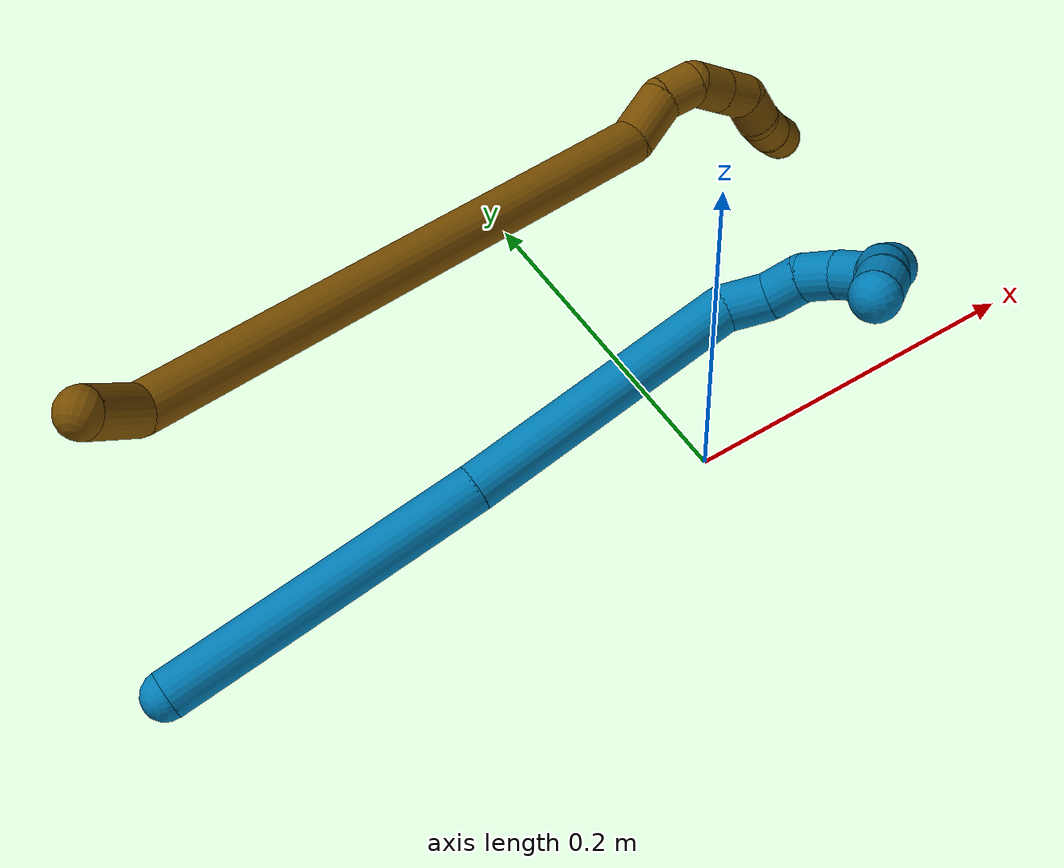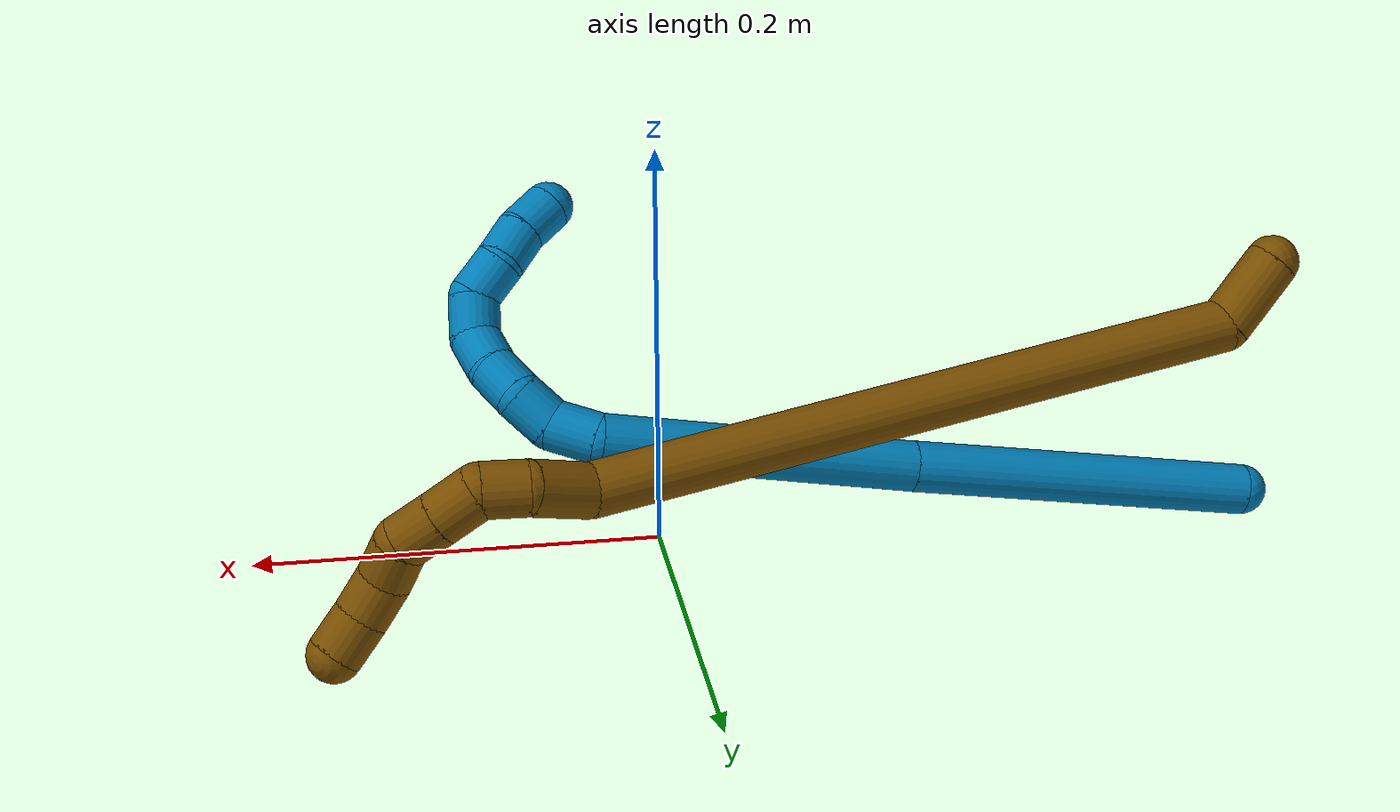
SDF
<sdf version="1.7">
 <world name="default">
  <model name="9">
   <static>0</static>
   <link name="9">
    <collision name="collision-cylinder-e_1_1_4">
     <pose>0.041623 -0.016449 -0.074744 2.92497 0.498118 2.33358</pose>
     <geometry><cylinder><radius>0.0125</radius><length>0.174239</length></cylinder></geometry>
     <surface>
      <friction><ode><mu>1.16</mu><mu2>1.16</mu2><slip1>0</slip1><slip2>0</slip2></ode></friction>
      <contact><ode><kp>1e+06</kp><kd>1</kd><max_vel>0</max_vel><min_depth>0.001</min_depth></ode></contact>
     </surface>
    </collision>
    <visual name="visual-cylinder-e_1_1_4">
     <pose>0.041623 -0.016449 -0.074744 2.92497 0.498118 2.33358</pose>
     <geometry><cylinder><radius>0.0125</radius><length>0.174239</length></cylinder></geometry>
     <material><ambient>0 0.490196 0.709804 1</ambient></material>
    </visual>
    <collision name="collision-cylinder-e_2_4_5">
     <pose>0.122552 -0.04569 -0.216565 2.95316 0.522289 2.46185</pose>
     <geometry><cylinder><radius>0.0125</radius><length>0.157578</length></cylinder></geometry>
     <surface>
      <friction><ode><mu>1.16</mu><mu2>1.16</mu2><slip1>0</slip1><slip2>0</slip2></ode></friction>
      <contact><ode><kp>1e+06</kp><kd>1</kd><max_vel>0</max_vel><min_depth>0.001</min_depth></ode></contact>
     </surface>
    </collision>
    <visual name="visual-cylinder-e_2_4_5">
     <pose>0.122552 -0.04569 -0.216565 2.95316 0.522289 2.46185</pose>
     <geometry><cylinder><radius>0.0125</radius><length>0.157578</length></cylinder></geometry>
     <material><ambient>0 0.490196 0.709804 1</ambient></material>
    </visual>
    <collision name="collision-cylinder-e_3_5_6">
     <pose>0.168104 -0.065312 -0.291522 2.42746 0.539659 1.27591</pose>
     <geometry><cylinder><radius>0.0125</radius><length>0.024316</length></cylinder></geometry>
     <surface>
      <friction><ode><mu>1.16</mu><mu2>1.16</mu2><slip1>0</slip1><slip2>0</slip2></ode></friction>
      <contact><ode><kp>1e+06</kp><kd>1</kd><max_vel>0</max_vel><min_depth>0.001</min_depth></ode></contact>
     </surface>
    </collision>
    <visual name="visual-cylinder-e_3_5_6">
     <pose>0.168104 -0.065312 -0.291522 2.42746 0.539659 1.27591</pose>
     <geometry><cylinder><radius>0.0125</radius><length>0.024316</length></cylinder></geometry>
     <material><ambient>0 0.490196 0.709804 1</ambient></material>
    </visual>
    <collision name="collision-cylinder-e_4_6_7">
     <pose>0.183006 -0.076727 -0.302951 2.22947 0.980701 1.65526</pose>
     <geometry><cylinder><radius>0.0125</radius><length>0.020833</length></cylinder></geometry>
     <surface>
      <friction><ode><mu>1.16</mu><mu2>1.16</mu2><slip1>0</slip1><slip2>0</slip2></ode></friction>
      <contact><ode><kp>1e+06</kp><kd>1</kd><max_vel>0</max_vel><min_depth>0.001</min_depth></ode></contact>
     </surface>
    </collision>
    <visual name="visual-cylinder-e_4_6_7">
     <pose>0.183006 -0.076727 -0.302951 2.22947 0.980701 1.65526</pose>
     <geometry><cylinder><radius>0.0125</radius><length>0.020833</length></cylinder></geometry>
     <material><ambient>0 0.490196 0.709804 1</ambient></material>
    </visual>
    <collision name="collision-cylinder-e_5_7_8">
     <pose>0.198006 -0.088919 -0.308067 1.77404 0.684872 0.824714</pose>
     <geometry><cylinder><radius>0.0125</radius><length>0.020061</length></cylinder></geometry>
     <surface>
      <friction><ode><mu>1.16</mu><mu2>1.16</mu2><slip1>0</slip1><slip2>0</slip2></ode></friction>
      <contact><ode><kp>1e+06</kp><kd>1</kd><max_vel>0</max_vel><min_depth>0.001</min_depth></ode></contact>
     </surface>
    </collision>
    <visual name="visual-cylinder-e_5_7_8">
     <pose>0.198006 -0.088919 -0.308067 1.77404 0.684872 0.824714</pose>
     <geometry><cylinder><radius>0.0125</radius><length>0.020061</length></cylinder></geometry>
     <material><ambient>0 0.490196 0.709804 1</ambient></material>
    </visual>
    <collision name="collision-cylinder-e_6_8_9">
     <pose>0.210494 -0.104882 -0.308862 1.4785 0.631981 0.579391</pose>
     <geometry><cylinder><radius>0.0125</radius><length>0.020798</length></cylinder></geometry>
     <surface>
      <friction><ode><mu>1.16</mu><mu2>1.16</mu2><slip1>0</slip1><slip2>0</slip2></ode></friction>
      <contact><ode><kp>1e+06</kp><kd>1</kd><max_vel>0</max_vel><min_depth>0.001</min_depth></ode></contact>
     </surface>
    </collision>
    <visual name="visual-cylinder-e_6_8_9">
     <pose>0.210494 -0.104882 -0.308862 1.4785 0.631981 0.579391</pose>
     <geometry><cylinder><radius>0.0125</radius><length>0.020798</length></cylinder></geometry>
     <material><ambient>0 0.490196 0.709804 1</ambient></material>
    </visual>
    <collision name="collision-cylinder-e_7_9_10">
     <pose>0.225006 -0.117287 -0.303474 0.720334 0.937834 0.377037</pose>
     <geometry><cylinder><radius>0.0125</radius><length>0.02076</length></cylinder></geometry>
     <surface>
      <friction><ode><mu>1.16</mu><mu2>1.16</mu2><slip1>0</slip1><slip2>0</slip2></ode></friction>
      <contact><ode><kp>1e+06</kp><kd>1</kd><max_vel>0</max_vel><min_depth>0.001</min_depth></ode></contact>
     </surface>
    </collision>
    <visual name="visual-cylinder-e_7_9_10">
     <pose>0.225006 -0.117287 -0.303474 0.720334 0.937834 0.377037</pose>
     <geometry><cylinder><radius>0.0125</radius><length>0.02076</length></cylinder></geometry>
     <material><ambient>0 0.490196 0.709804 1</ambient></material>
    </visual>
    <collision name="collision-cylinder-e_8_10_11">
     <pose>0.237925 -0.122293 -0.289406 0.100732 0.446579 0.022892</pose>
     <geometry><cylinder><radius>0.0125</radius><length>0.021067</length></cylinder></geometry>
     <surface>
      <friction><ode><mu>1.16</mu><mu2>1.16</mu2><slip1>0</slip1><slip2>0</slip2></ode></friction>
      <contact><ode><kp>1e+06</kp><kd>1</kd><max_vel>0</max_vel><min_depth>0.001</min_depth></ode></contact>
     </surface>
    </collision>
    <visual name="visual-cylinder-e_8_10_11">
     <pose>0.237925 -0.122293 -0.289406 0.100732 0.446579 0.022892</pose>
     <geometry><cylinder><radius>0.0125</radius><length>0.021067</length></cylinder></geometry>
     <material><ambient>0 0.490196 0.709804 1</ambient></material>
    </visual>
    <collision name="collision-cylinder-e_9_11_12">
     <pose>0.246021 -0.126929 -0.271355 0.404447 0.362499 0.075111</pose>
     <geometry><cylinder><radius>0.0125</radius><length>0.020007</length></cylinder></geometry>
     <surface>
      <friction><ode><mu>1.16</mu><mu2>1.16</mu2><slip1>0</slip1><slip2>0</slip2></ode></friction>
      <contact><ode><kp>1e+06</kp><kd>1</kd><max_vel>0</max_vel><min_depth>0.001</min_depth></ode></contact>
     </surface>
    </collision>
    <visual name="visual-cylinder-e_9_11_12">
     <pose>0.246021 -0.126929 -0.271355 0.404447 0.362499 0.075111</pose>
     <geometry><cylinder><radius>0.0125</radius><length>0.020007</length></cylinder></geometry>
     <material><ambient>0 0.490196 0.709804 1</ambient></material>
    </visual>
    <collision name="collision-cylinder-e_10_12_2">
     <pose>0.251367 -0.133634 -0.253214 0.306923 0.177741 0.027563</pose>
     <geometry><cylinder><radius>0.0125</radius><length>0.020342</length></cylinder></geometry>
     <surface>
      <friction><ode><mu>1.16</mu><mu2>1.16</mu2><slip1>0</slip1><slip2>0</slip2></ode></friction>
      <contact><ode><kp>1e+06</kp><kd>1</kd><max_vel>0</max_vel><min_depth>0.001</min_depth></ode></contact>
     </surface>
    </collision>
    <visual name="visual-cylinder-e_10_12_2">
     <pose>0.251367 -0.133634 -0.253214 0.306923 0.177741 0.027563</pose>
     <geometry><cylinder><radius>0.0125</radius><length>0.020342</length></cylinder></geometry>
     <material><ambient>0 0.490196 0.709804 1</ambient></material>
    </visual>
    <collision name="collision-sphere-2">
     <pose>0.253165 -0.136659 -0.243671 0 -0 0</pose>
     <geometry><sphere><radius>0.0125</radius></sphere></geometry>
     <surface>
      <friction><ode><mu>1.16</mu><mu2>1.16</mu2><slip1>0</slip1><slip2>0</slip2></ode></friction>
      <contact><ode><kp>1e+06</kp><kd>1</kd><max_vel>0</max_vel><min_depth>0.001</min_depth></ode></contact>
     </surface>
    </collision>
    <visual name="visual-sphere-2">
     <pose>0.253165 -0.136659 -0.243671 0 -0 0</pose>
     <geometry><sphere><radius>0.0125</radius></sphere></geometry>
     <material><ambient>0 0.490196 0.709804 1</ambient></material>
    </visual>
    <collision name="collision-sphere-12">
     <pose>0.249569 -0.13061 -0.262757 0 -0 0</pose>
     <geometry><sphere><radius>0.0125</radius></sphere></geometry>
     <surface>
      <friction><ode><mu>1.16</mu><mu2>1.16</mu2><slip1>0</slip1><slip2>0</slip2></ode></friction>
      <contact><ode><kp>1e+06</kp><kd>1</kd><max_vel>0</max_vel><min_depth>0.001</min_depth></ode></contact>
     </surface>
    </collision>
    <visual name="visual-sphere-12">
     <pose>0.249569 -0.13061 -0.262757 0 -0 0</pose>
     <geometry><sphere><radius>0.0125</radius></sphere></geometry>
     <material><ambient>0 0.490196 0.709804 1</ambient></material>
    </visual>
    <collision name="collision-sphere-11">
     <pose>0.242474 -0.123248 -0.279954 0 -0 0</pose>
     <geometry><sphere><radius>0.0125</radius></sphere></geometry>
     <surface>
      <friction><ode><mu>1.16</mu><mu2>1.16</mu2><slip1>0</slip1><slip2>0</slip2></ode></friction>
      <contact><ode><kp>1e+06</kp><kd>1</kd><max_vel>0</max_vel><min_depth>0.001</min_depth></ode></contact>
     </surface>
    </collision>
    <visual name="visual-sphere-11">
     <pose>0.242474 -0.123248 -0.279954 0 -0 0</pose>
     <geometry><sphere><radius>0.0125</radius></sphere></geometry>
     <material><ambient>0 0.490196 0.709804 1</ambient></material>
    </visual>
    <collision name="collision-sphere-10">
     <pose>0.233376 -0.121338 -0.298859 0 -0 0</pose>
     <geometry><sphere><radius>0.0125</radius></sphere></geometry>
     <surface>
      <friction><ode><mu>1.16</mu><mu2>1.16</mu2><slip1>0</slip1><slip2>0</slip2></ode></friction>
      <contact><ode><kp>1e+06</kp><kd>1</kd><max_vel>0</max_vel><min_depth>0.001</min_depth></ode></contact>
     </surface>
    </collision>
    <visual name="visual-sphere-10">
     <pose>0.233376 -0.121338 -0.298859 0 -0 0</pose>
     <geometry><sphere><radius>0.0125</radius></sphere></geometry>
     <material><ambient>0 0.490196 0.709804 1</ambient></material>
    </visual>
    <collision name="collision-sphere-9">
     <pose>0.216637 -0.113237 -0.308088 0 -0 0</pose>
     <geometry><sphere><radius>0.0125</radius></sphere></geometry>
     <surface>
      <friction><ode><mu>1.16</mu><mu2>1.16</mu2><slip1>0</slip1><slip2>0</slip2></ode></friction>
      <contact><ode><kp>1e+06</kp><kd>1</kd><max_vel>0</max_vel><min_depth>0.001</min_depth></ode></contact>
     </surface>
    </collision>
    <visual name="visual-sphere-9">
     <pose>0.216637 -0.113237 -0.308088 0 -0 0</pose>
     <geometry><sphere><radius>0.0125</radius></sphere></geometry>
     <material><ambient>0 0.490196 0.709804 1</ambient></material>
    </visual>
    <collision name="collision-sphere-4">
     <pose>0.083247 -0.032898 -0.149489 0 -0 0</pose>
     <geometry><sphere><radius>0.0125</radius></sphere></geometry>
     <surface>
      <friction><ode><mu>1.16</mu><mu2>1.16</mu2><slip1>0</slip1><slip2>0</slip2></ode></friction>
      <contact><ode><kp>1e+06</kp><kd>1</kd><max_vel>0</max_vel><min_depth>0.001</min_depth></ode></contact>
     </surface>
    </collision>
    <visual name="visual-sphere-4">
     <pose>0.083247 -0.032898 -0.149489 0 -0 0</pose>
     <geometry><sphere><radius>0.0125</radius></sphere></geometry>
     <material><ambient>0 0.490196 0.709804 1</ambient></material>
    </visual>
    <collision name="collision-sphere-1">
     <geometry><sphere><radius>0.0125</radius></sphere></geometry>
     <surface>
      <friction><ode><mu>1.16</mu><mu2>1.16</mu2><slip1>0</slip1><slip2>0</slip2></ode></friction>
      <contact><ode><kp>1e+06</kp><kd>1</kd><max_vel>0</max_vel><min_depth>0.001</min_depth></ode></contact>
     </surface>
    </collision>
    <visual name="visual-sphere-1">
     <geometry><sphere><radius>0.0125</radius></sphere></geometry>
     <material><ambient>0 0.490196 0.709804 1</ambient></material>
    </visual>
    <collision name="collision-sphere-8">
     <pose>0.204351 -0.096528 -0.309635 0 -0 0</pose>
     <geometry><sphere><radius>0.0125</radius></sphere></geometry>
     <surface>
      <friction><ode><mu>1.16</mu><mu2>1.16</mu2><slip1>0</slip1><slip2>0</slip2></ode></friction>
      <contact><ode><kp>1e+06</kp><kd>1</kd><max_vel>0</max_vel><min_depth>0.001</min_depth></ode></contact>
     </surface>
    </collision>
    <visual name="visual-sphere-8">
     <pose>0.204351 -0.096528 -0.309635 0 -0 0</pose>
     <geometry><sphere><radius>0.0125</radius></sphere></geometry>
     <material><ambient>0 0.490196 0.709804 1</ambient></material>
    </visual>
    <collision name="collision-sphere-5">
     <pose>0.161857 -0.058481 -0.283641 0 -0 0</pose>
     <geometry><sphere><radius>0.0125</radius></sphere></geometry>
     <surface>
      <friction><ode><mu>1.16</mu><mu2>1.16</mu2><slip1>0</slip1><slip2>0</slip2></ode></friction>
      <contact><ode><kp>1e+06</kp><kd>1</kd><max_vel>0</max_vel><min_depth>0.001</min_depth></ode></contact>
     </surface>
    </collision>
    <visual name="visual-sphere-5">
     <pose>0.161857 -0.058481 -0.283641 0 -0 0</pose>
     <geometry><sphere><radius>0.0125</radius></sphere></geometry>
     <material><ambient>0 0.490196 0.709804 1</ambient></material>
    </visual>
    <collision name="collision-sphere-6">
     <pose>0.174351 -0.072143 -0.299404 0 -0 0</pose>
     <geometry><sphere><radius>0.0125</radius></sphere></geometry>
     <surface>
      <friction><ode><mu>1.16</mu><mu2>1.16</mu2><slip1>0</slip1><slip2>0</slip2></ode></friction>
      <contact><ode><kp>1e+06</kp><kd>1</kd><max_vel>0</max_vel><min_depth>0.001</min_depth></ode></contact>
     </surface>
    </collision>
    <visual name="visual-sphere-6">
     <pose>0.174351 -0.072143 -0.299404 0 -0 0</pose>
     <geometry><sphere><radius>0.0125</radius></sphere></geometry>
     <material><ambient>0 0.490196 0.709804 1</ambient></material>
    </visual>
    <collision name="collision-sphere-7">
     <pose>0.191661 -0.08131 -0.306499 0 -0 0</pose>
     <geometry><sphere><radius>0.0125</radius></sphere></geometry>
     <surface>
      <friction><ode><mu>1.16</mu><mu2>1.16</mu2><slip1>0</slip1><slip2>0</slip2></ode></friction>
      <contact><ode><kp>1e+06</kp><kd>1</kd><max_vel>0</max_vel><min_depth>0.001</min_depth></ode></contact>
     </surface>
    </collision>
    <visual name="visual-sphere-7">
     <pose>0.191661 -0.08131 -0.306499 0 -0 0</pose>
     <geometry><sphere><radius>0.0125</radius></sphere></geometry>
     <material><ambient>0 0.490196 0.709804 1</ambient></material>
    </visual>
    <inertial>
     <pose>0.125066 -0.054973 -0.19226 0 -0 0</pose>
     <mass>0.5</mass>
     <inertia><ixx>1e-06</ixx><ixy>0</ixy><ixz>0</ixz><iyy>0.001076</iyy><iyz>0</iyz><izz>-0.000261</izz></inertia>
    </inertial>
   </link>
   <pose>-0.294264 0.022108 0.013951 0.43423 -1.22143 -0.167668</pose>
  </model>
  <model name="12">
   <static>0</static>
   <link name="12">
    <collision name="collision-cylinder-e_1_1_4">
     <pose>0.007188 -0.013499 -0.010546 2.234 0.397323 0.782894</pose>
     <geometry><cylinder><radius>0.0125</radius><length>0.037154</length></cylinder></geometry>
     <surface>
      <friction><ode><mu>1.16</mu><mu2>1.16</mu2><slip1>0</slip1><slip2>0</slip2></ode></friction>
      <contact><ode><kp>1e+06</kp><kd>1</kd><max_vel>0</max_vel><min_depth>0.001</min_depth></ode></contact>
     </surface>
    </collision>
    <visual name="visual-cylinder-e_1_1_4">
     <pose>0.007188 -0.013499 -0.010546 2.234 0.397323 0.782894</pose>
     <geometry><cylinder><radius>0.0125</radius><length>0.037154</length></cylinder></geometry>
     <material><ambient>0.466667 0.301961 0 1</ambient></material>
    </visual>
    <collision name="collision-cylinder-e_2_4_5">
     <pose>0.108001 -0.048078 -0.142723 2.96998 0.648876 2.64082</pose>
     <geometry><cylinder><radius>0.0125</radius><length>0.309866</length></cylinder></geometry>
     <surface>
      <friction><ode><mu>1.16</mu><mu2>1.16</mu2><slip1>0</slip1><slip2>0</slip2></ode></friction>
      <contact><ode><kp>1e+06</kp><kd>1</kd><max_vel>0</max_vel><min_depth>0.001</min_depth></ode></contact>
     </surface>
    </collision>
    <visual name="visual-cylinder-e_2_4_5">
     <pose>0.108001 -0.048078 -0.142723 2.96998 0.648876 2.64082</pose>
     <geometry><cylinder><radius>0.0125</radius><length>0.309866</length></cylinder></geometry>
     <material><ambient>0.466667 0.301961 0 1</ambient></material>
    </visual>
    <collision name="collision-cylinder-e_3_5_6">
     <pose>0.207194 -0.06584 -0.278069 -2.90421 0.375889 -2.02149</pose>
     <geometry><cylinder><radius>0.0125</radius><length>0.030336</length></cylinder></geometry>
     <surface>
      <friction><ode><mu>1.16</mu><mu2>1.16</mu2><slip1>0</slip1><slip2>0</slip2></ode></friction>
      <contact><ode><kp>1e+06</kp><kd>1</kd><max_vel>0</max_vel><min_depth>0.001</min_depth></ode></contact>
     </surface>
    </collision>
    <visual name="visual-cylinder-e_3_5_6">
     <pose>0.207194 -0.06584 -0.278069 -2.90421 0.375889 -2.02149</pose>
     <geometry><cylinder><radius>0.0125</radius><length>0.030336</length></cylinder></geometry>
     <material><ambient>0.466667 0.301961 0 1</ambient></material>
    </visual>
    <collision name="collision-cylinder-e_4_6_7">
     <pose>0.220296 -0.0622 -0.29929 -3.09868 0.786672 -3.03825</pose>
     <geometry><cylinder><radius>0.0125</radius><length>0.021281</length></cylinder></geometry>
     <surface>
      <friction><ode><mu>1.16</mu><mu2>1.16</mu2><slip1>0</slip1><slip2>0</slip2></ode></friction>
      <contact><ode><kp>1e+06</kp><kd>1</kd><max_vel>0</max_vel><min_depth>0.001</min_depth></ode></contact>
     </surface>
    </collision>
    <visual name="visual-cylinder-e_4_6_7">
     <pose>0.220296 -0.0622 -0.29929 -3.09868 0.786672 -3.03825</pose>
     <geometry><cylinder><radius>0.0125</radius><length>0.021281</length></cylinder></geometry>
     <material><ambient>0.466667 0.301961 0 1</ambient></material>
    </visual>
    <collision name="collision-cylinder-e_5_7_8">
     <pose>0.235368 -0.067706 -0.311428 2.24218 0.791685 1.42715</pose>
     <geometry><cylinder><radius>0.0125</radius><length>0.021189</length></cylinder></geometry>
     <surface>
      <friction><ode><mu>1.16</mu><mu2>1.16</mu2><slip1>0</slip1><slip2>0</slip2></ode></friction>
      <contact><ode><kp>1e+06</kp><kd>1</kd><max_vel>0</max_vel><min_depth>0.001</min_depth></ode></contact>
     </surface>
    </collision>
    <visual name="visual-cylinder-e_5_7_8">
     <pose>0.235368 -0.067706 -0.311428 2.24218 0.791685 1.42715</pose>
     <geometry><cylinder><radius>0.0125</radius><length>0.021189</length></cylinder></geometry>
     <material><ambient>0.466667 0.301961 0 1</ambient></material>
    </visual>
    <collision name="collision-cylinder-e_6_8_9">
     <pose>0.250213 -0.078914 -0.320432 2.25342 0.81165 1.46904</pose>
     <geometry><cylinder><radius>0.0125</radius><length>0.020143</length></cylinder></geometry>
     <surface>
      <friction><ode><mu>1.16</mu><mu2>1.16</mu2><slip1>0</slip1><slip2>0</slip2></ode></friction>
      <contact><ode><kp>1e+06</kp><kd>1</kd><max_vel>0</max_vel><min_depth>0.001</min_depth></ode></contact>
     </surface>
    </collision>
    <visual name="visual-cylinder-e_6_8_9">
     <pose>0.250213 -0.078914 -0.320432 2.25342 0.81165 1.46904</pose>
     <geometry><cylinder><radius>0.0125</radius><length>0.020143</length></cylinder></geometry>
     <material><ambient>0.466667 0.301961 0 1</ambient></material>
    </visual>
    <collision name="collision-cylinder-e_7_9_10">
     <pose>0.262811 -0.092784 -0.324861 1.57741 0.557322 0.560831</pose>
     <geometry><cylinder><radius>0.0125</radius><length>0.02001</length></cylinder></geometry>
     <surface>
      <friction><ode><mu>1.16</mu><mu2>1.16</mu2><slip1>0</slip1><slip2>0</slip2></ode></friction>
      <contact><ode><kp>1e+06</kp><kd>1</kd><max_vel>0</max_vel><min_depth>0.001</min_depth></ode></contact>
     </surface>
    </collision>
    <visual name="visual-cylinder-e_7_9_10">
     <pose>0.262811 -0.092784 -0.324861 1.57741 0.557322 0.560831</pose>
     <geometry><cylinder><radius>0.0125</radius><length>0.02001</length></cylinder></geometry>
     <material><ambient>0.466667 0.301961 0 1</ambient></material>
    </visual>
    <collision name="collision-cylinder-e_8_10_11">
     <pose>0.272306 -0.109523 -0.328702 2.00099 0.433766 0.661826</pose>
     <geometry><cylinder><radius>0.0125</radius><length>0.020004</length></cylinder></geometry>
     <surface>
      <friction><ode><mu>1.16</mu><mu2>1.16</mu2><slip1>0</slip1><slip2>0</slip2></ode></friction>
      <contact><ode><kp>1e+06</kp><kd>1</kd><max_vel>0</max_vel><min_depth>0.001</min_depth></ode></contact>
     </surface>
    </collision>
    <visual name="visual-cylinder-e_8_10_11">
     <pose>0.272306 -0.109523 -0.328702 2.00099 0.433766 0.661826</pose>
     <geometry><cylinder><radius>0.0125</radius><length>0.020004</length></cylinder></geometry>
     <material><ambient>0.466667 0.301961 0 1</ambient></material>
    </visual>
    <collision name="collision-cylinder-e_9_11_2">
     <pose>0.280251 -0.125532 -0.337582 2.15175 0.383045 0.689792</pose>
     <geometry><cylinder><radius>0.0125</radius><length>0.020016</length></cylinder></geometry>
     <surface>
      <friction><ode><mu>1.16</mu><mu2>1.16</mu2><slip1>0</slip1><slip2>0</slip2></ode></friction>
      <contact><ode><kp>1e+06</kp><kd>1</kd><max_vel>0</max_vel><min_depth>0.001</min_depth></ode></contact>
     </surface>
    </collision>
    <visual name="visual-cylinder-e_9_11_2">
     <pose>0.280251 -0.125532 -0.337582 2.15175 0.383045 0.689792</pose>
     <geometry><cylinder><radius>0.0125</radius><length>0.020016</length></cylinder></geometry>
     <material><ambient>0.466667 0.301961 0 1</ambient></material>
    </visual>
    <collision name="collision-sphere-2">
     <pose>0.283991 -0.133291 -0.342676 0 -0 0</pose>
     <geometry><sphere><radius>0.0125</radius></sphere></geometry>
     <surface>
      <friction><ode><mu>1.16</mu><mu2>1.16</mu2><slip1>0</slip1><slip2>0</slip2></ode></friction>
      <contact><ode><kp>1e+06</kp><kd>1</kd><max_vel>0</max_vel><min_depth>0.001</min_depth></ode></contact>
     </surface>
    </collision>
    <visual name="visual-sphere-2">
     <pose>0.283991 -0.133291 -0.342676 0 -0 0</pose>
     <geometry><sphere><radius>0.0125</radius></sphere></geometry>
     <material><ambient>0.466667 0.301961 0 1</ambient></material>
    </visual>
    <collision name="collision-sphere-11">
     <pose>0.27651 -0.117772 -0.332487 0 -0 0</pose>
     <geometry><sphere><radius>0.0125</radius></sphere></geometry>
     <surface>
      <friction><ode><mu>1.16</mu><mu2>1.16</mu2><slip1>0</slip1><slip2>0</slip2></ode></friction>
      <contact><ode><kp>1e+06</kp><kd>1</kd><max_vel>0</max_vel><min_depth>0.001</min_depth></ode></contact>
     </surface>
    </collision>
    <visual name="visual-sphere-11">
     <pose>0.27651 -0.117772 -0.332487 0 -0 0</pose>
     <geometry><sphere><radius>0.0125</radius></sphere></geometry>
     <material><ambient>0.466667 0.301961 0 1</ambient></material>
    </visual>
    <collision name="collision-sphere-10">
     <pose>0.268103 -0.101274 -0.324917 0 -0 0</pose>
     <geometry><sphere><radius>0.0125</radius></sphere></geometry>
     <surface>
      <friction><ode><mu>1.16</mu><mu2>1.16</mu2><slip1>0</slip1><slip2>0</slip2></ode></friction>
      <contact><ode><kp>1e+06</kp><kd>1</kd><max_vel>0</max_vel><min_depth>0.001</min_depth></ode></contact>
     </surface>
    </collision>
    <visual name="visual-sphere-10">
     <pose>0.268103 -0.101274 -0.324917 0 -0 0</pose>
     <geometry><sphere><radius>0.0125</radius></sphere></geometry>
     <material><ambient>0.466667 0.301961 0 1</ambient></material>
    </visual>
    <collision name="collision-sphere-9">
     <pose>0.257519 -0.084293 -0.324805 0 -0 0</pose>
     <geometry><sphere><radius>0.0125</radius></sphere></geometry>
     <surface>
      <friction><ode><mu>1.16</mu><mu2>1.16</mu2><slip1>0</slip1><slip2>0</slip2></ode></friction>
      <contact><ode><kp>1e+06</kp><kd>1</kd><max_vel>0</max_vel><min_depth>0.001</min_depth></ode></contact>
     </surface>
    </collision>
    <visual name="visual-sphere-9">
     <pose>0.257519 -0.084293 -0.324805 0 -0 0</pose>
     <geometry><sphere><radius>0.0125</radius></sphere></geometry>
     <material><ambient>0.466667 0.301961 0 1</ambient></material>
    </visual>
    <collision name="collision-sphere-4">
     <pose>0.014377 -0.026998 -0.021092 0 -0 0</pose>
     <geometry><sphere><radius>0.0125</radius></sphere></geometry>
     <surface>
      <friction><ode><mu>1.16</mu><mu2>1.16</mu2><slip1>0</slip1><slip2>0</slip2></ode></friction>
      <contact><ode><kp>1e+06</kp><kd>1</kd><max_vel>0</max_vel><min_depth>0.001</min_depth></ode></contact>
     </surface>
    </collision>
    <visual name="visual-sphere-4">
     <pose>0.014377 -0.026998 -0.021092 0 -0 0</pose>
     <geometry><sphere><radius>0.0125</radius></sphere></geometry>
     <material><ambient>0.466667 0.301961 0 1</ambient></material>
    </visual>
    <collision name="collision-sphere-1">
     <geometry><sphere><radius>0.0125</radius></sphere></geometry>
     <surface>
      <friction><ode><mu>1.16</mu><mu2>1.16</mu2><slip1>0</slip1><slip2>0</slip2></ode></friction>
      <contact><ode><kp>1e+06</kp><kd>1</kd><max_vel>0</max_vel><min_depth>0.001</min_depth></ode></contact>
     </surface>
    </collision>
    <visual name="visual-sphere-1">
     <geometry><sphere><radius>0.0125</radius></sphere></geometry>
     <material><ambient>0.466667 0.301961 0 1</ambient></material>
    </visual>
    <collision name="collision-sphere-8">
     <pose>0.242907 -0.073535 -0.316059 0 -0 0</pose>
     <geometry><sphere><radius>0.0125</radius></sphere></geometry>
     <surface>
      <friction><ode><mu>1.16</mu><mu2>1.16</mu2><slip1>0</slip1><slip2>0</slip2></ode></friction>
      <contact><ode><kp>1e+06</kp><kd>1</kd><max_vel>0</max_vel><min_depth>0.001</min_depth></ode></contact>
     </surface>
    </collision>
    <visual name="visual-sphere-8">
     <pose>0.242907 -0.073535 -0.316059 0 -0 0</pose>
     <geometry><sphere><radius>0.0125</radius></sphere></geometry>
     <material><ambient>0.466667 0.301961 0 1</ambient></material>
    </visual>
    <collision name="collision-sphere-5">
     <pose>0.201626 -0.069158 -0.264355 0 -0 0</pose>
     <geometry><sphere><radius>0.0125</radius></sphere></geometry>
     <surface>
      <friction><ode><mu>1.16</mu><mu2>1.16</mu2><slip1>0</slip1><slip2>0</slip2></ode></friction>
      <contact><ode><kp>1e+06</kp><kd>1</kd><max_vel>0</max_vel><min_depth>0.001</min_depth></ode></contact>
     </surface>
    </collision>
    <visual name="visual-sphere-5">
     <pose>0.201626 -0.069158 -0.264355 0 -0 0</pose>
     <geometry><sphere><radius>0.0125</radius></sphere></geometry>
     <material><ambient>0.466667 0.301961 0 1</ambient></material>
    </visual>
    <collision name="collision-sphere-6">
     <pose>0.212763 -0.062523 -0.291782 0 -0 0</pose>
     <geometry><sphere><radius>0.0125</radius></sphere></geometry>
     <surface>
      <friction><ode><mu>1.16</mu><mu2>1.16</mu2><slip1>0</slip1><slip2>0</slip2></ode></friction>
      <contact><ode><kp>1e+06</kp><kd>1</kd><max_vel>0</max_vel><min_depth>0.001</min_depth></ode></contact>
     </surface>
    </collision>
    <visual name="visual-sphere-6">
     <pose>0.212763 -0.062523 -0.291782 0 -0 0</pose>
     <geometry><sphere><radius>0.0125</radius></sphere></geometry>
     <material><ambient>0.466667 0.301961 0 1</ambient></material>
    </visual>
    <collision name="collision-sphere-7">
     <pose>0.22783 -0.061878 -0.306797 0 -0 0</pose>
     <geometry><sphere><radius>0.0125</radius></sphere></geometry>
     <surface>
      <friction><ode><mu>1.16</mu><mu2>1.16</mu2><slip1>0</slip1><slip2>0</slip2></ode></friction>
      <contact><ode><kp>1e+06</kp><kd>1</kd><max_vel>0</max_vel><min_depth>0.001</min_depth></ode></contact>
     </surface>
    </collision>
    <visual name="visual-sphere-7">
     <pose>0.22783 -0.061878 -0.306797 0 -0 0</pose>
     <geometry><sphere><radius>0.0125</radius></sphere></geometry>
     <material><ambient>0.466667 0.301961 0 1</ambient></material>
    </visual>
    <inertial>
     <pose>0.142099 -0.056609 -0.184616 0 -0 0</pose>
     <mass>0.5</mass>
     <inertia>
      <ixx>-0.000756</ixx>
      <ixy>0</ixy>
      <ixz>0</ixz>
      <iyy>0.003228</iyy>
      <iyz>0</iyz>
      <izz>-0.001194</izz>
     </inertia>
    </inertial>
   </link>
   <pose>-0.277749 0.079438 0.155736 1.67595 0.114129 -0.751873</pose>
  </model>
 </world>
</sdf>
